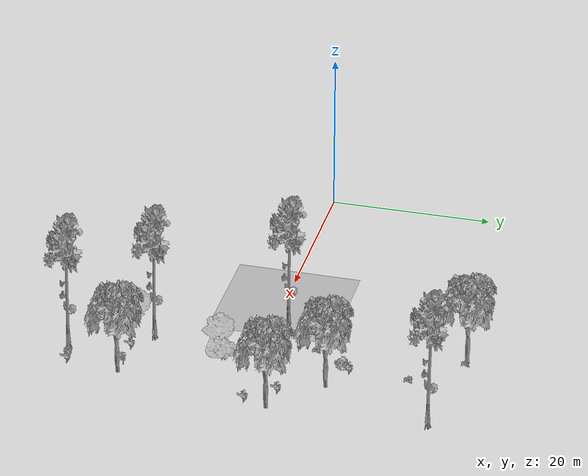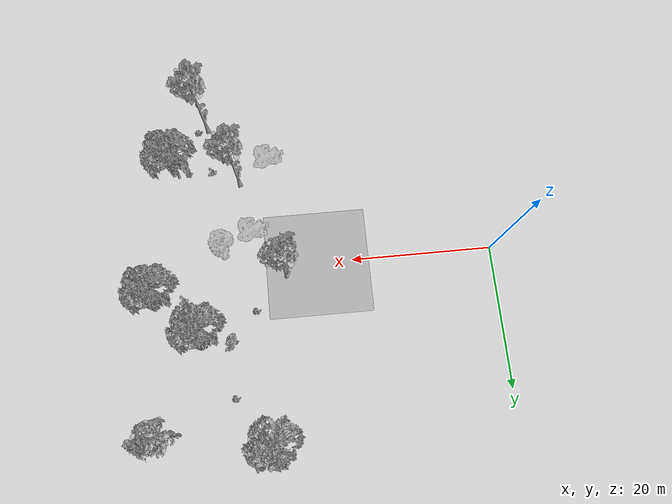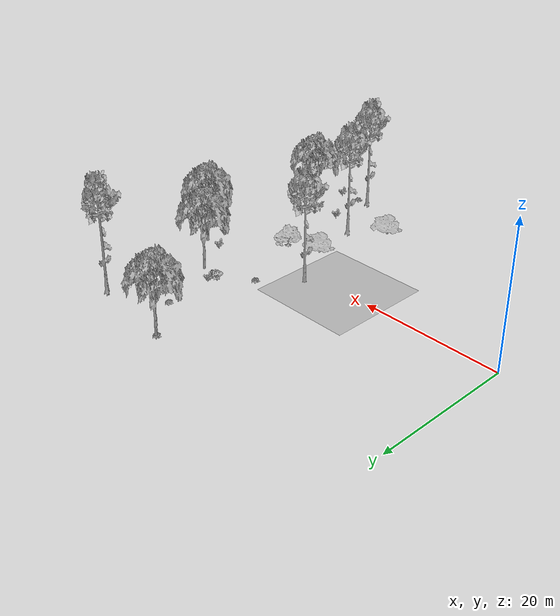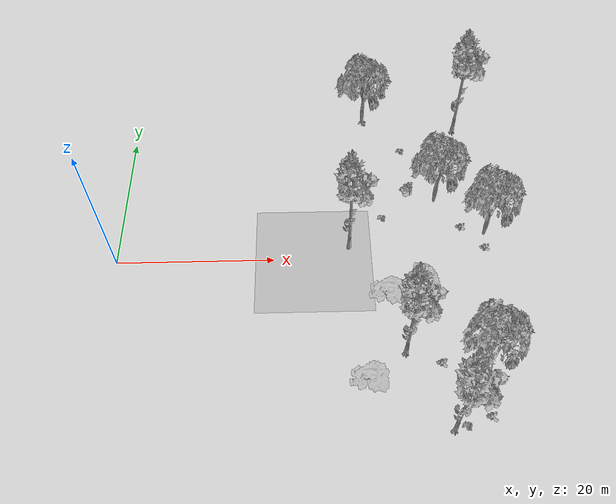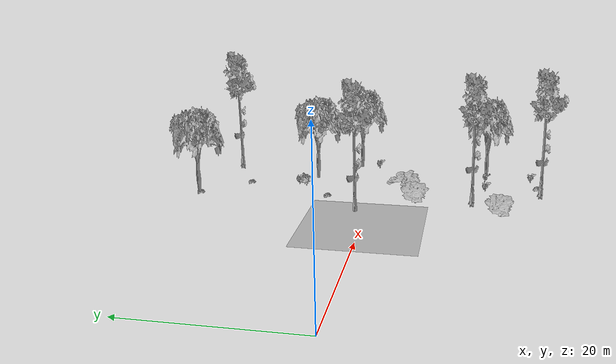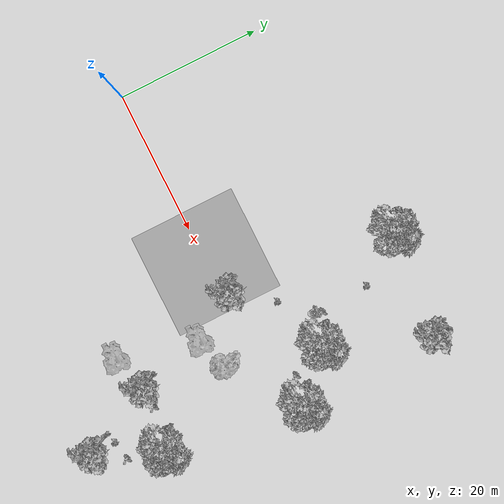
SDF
<sdf version="1.7">
 <world name="default">
  <model name="ground_plane">
   <static>1</static>
   <link name="link">
    <collision name="collision">
     <pose>25.0 0 0 0 -0 0</pose>
     <geometry><plane><normal>0 0 1</normal><size>50 50</size></plane></geometry>
     <surface><contact><ode><min_depth>0.01</min_depth><max_vel>0</max_vel></ode></contact></surface>
    </collision>
    <visual name="grass">
     <pose>25.0 0 0 0 -0 0</pose>
     <cast_shadows>0</cast_shadows>
     <geometry>
      <mesh>
       <scale>0.2731578947368421 0.2802702702702703 0.1</scale>
       <uri>file://grass_plane/meshes/grass_plane.dae</uri>
      </mesh>
     </geometry>
    </visual>
   </link>
  </model>
  <model name="Tree 2">
   <static>1</static>
   <pose>38.384416345682084 -3.901627223584814 0 1.57079 -0 0</pose>
   <link name="link">
    <collision name="collision">
     <geometry><mesh><scale>4 2.5 4</scale><uri>model://tree_1/meshes/tree_1.obj</uri></mesh></geometry>
    </collision>
    <visual name="visual">
     <geometry><mesh><scale>4 2.5 4</scale><uri>model://tree_1/meshes/tree_1.obj</uri></mesh></geometry>
    </visual>
   </link>
  </model>
  <model name="Tree 4">
   <static>1</static>
   <pose>32.509416345682084 23.876150554192954 0 1.57079 -0 0</pose>
   <link name="link">
    <collision name="collision">
     <geometry><mesh><scale>3.5 5 3.5</scale><uri>model://tree_2/meshes/tree_2.obj</uri></mesh></geometry>
    </collision>
    <visual name="visual">
     <geometry><mesh><scale>3.5 5 3.5</scale><uri>model://tree_2/meshes/tree_2.obj</uri></mesh></geometry>
    </visual>
   </link>
  </model>
  <model name="Tree 6">
   <static>1</static>
   <pose>44.259416345682084 -15.012738334695918 0 1.57079 -0 0</pose>
   <link name="link">
    <collision name="collision">
     <geometry><mesh><scale>3.5 5 3.5</scale><uri>model://tree_2/meshes/tree_2.obj</uri></mesh></geometry>
    </collision>
    <visual name="visual">
     <geometry><mesh><scale>3.5 5 3.5</scale><uri>model://tree_2/meshes/tree_2.obj</uri></mesh></geometry>
    </visual>
   </link>
  </model>
  <model name="Tree 8">
   <static>1</static>
   <pose>29.57191634568208 1.6539283319707323 0 1.57079 -0 0</pose>
   <link name="link">
    <collision name="collision">
     <geometry><mesh><scale>3.5 5 3.5</scale><uri>model://tree_9/meshes/tree_9.obj</uri></mesh></geometry>
    </collision>
    <visual name="visual">
     <geometry><mesh><scale>3.5 5 3.5</scale><uri>model://tree_9/meshes/tree_9.obj</uri></mesh></geometry>
    </visual>
   </link>
  </model>
  <model name="Tree 10">
   <static>1</static>
   <pose>41.321916345682084 9.061335739378137 0 1.57079 -0 0</pose>
   <link name="link">
    <collision name="collision">
     <geometry><mesh><scale>3.5 5 3.5</scale><uri>model://tree_2/meshes/tree_2.obj</uri></mesh></geometry>
    </collision>
    <visual name="visual">
     <geometry><mesh><scale>3.5 5 3.5</scale><uri>model://tree_2/meshes/tree_2.obj</uri></mesh></geometry>
    </visual>
   </link>
  </model>
  <model name="Tree 12">
   <static>1</static>
   <pose>35.446916345682084 -13.160886482844067 0 1.57079 -0 0</pose>
   <link name="link">
    <collision name="collision">
     <geometry><mesh><scale>3.5 5 3.5</scale><uri>model://tree_9/meshes/tree_9.obj</uri></mesh></geometry>
    </collision>
    <visual name="visual">
     <geometry><mesh><scale>3.5 5 3.5</scale><uri>model://tree_9/meshes/tree_9.obj</uri></mesh></geometry>
    </visual>
   </link>
  </model>
  <model name="Tree 14">
   <static>1</static>
   <pose>47.196916345682084 3.505780183822594 0 1.57079 -0 0</pose>
   <link name="link">
    <collision name="collision">
     <geometry><mesh><scale>3.5 5 3.5</scale><uri>model://tree_2/meshes/tree_2.obj</uri></mesh></geometry>
    </collision>
    <visual name="visual">
     <geometry><mesh><scale>3.5 5 3.5</scale><uri>model://tree_2/meshes/tree_2.obj</uri></mesh></geometry>
    </visual>
   </link>
  </model>
  <model name="Tree 18">
   <static>1</static>
   <pose>39.853166345682084 -22.420145742103326 0 1.57079 -0 0</pose>
   <link name="link">
    <collision name="collision">
     <geometry><mesh><scale>3.5 5 3.5</scale><uri>model://tree_9/meshes/tree_9.obj</uri></mesh></geometry>
    </collision>
    <visual name="visual">
     <geometry><mesh><scale>3.5 5 3.5</scale><uri>model://tree_9/meshes/tree_9.obj</uri></mesh></geometry>
    </visual>
   </link>
  </model>
  <model name="Tree 20">
   <static>1</static>
   <pose>33.978166345682084 -5.753479075436665 0 1.57079 -0 0</pose>
   <link name="link">
    <collision name="collision">
     <geometry><mesh><scale>3 2 3</scale><uri>model://tree_3/meshes/tree_3.obj</uri></mesh></geometry>
    </collision>
    <visual name="visual">
     <geometry><mesh><scale>3 2 3</scale><uri>model://tree_3/meshes/tree_3.obj</uri></mesh></geometry>
    </visual>
   </link>
  </model>
  <model name="Tree 22">
   <static>1</static>
   <pose>45.728166345682084 22.024298702341106 0 1.57079 -0 0</pose>
   <link name="link">
    <collision name="collision">
     <geometry><mesh><scale>3.5 5 3.5</scale><uri>model://tree_9/meshes/tree_9.obj</uri></mesh></geometry>
    </collision>
    <visual name="visual">
     <geometry><mesh><scale>3.5 5 3.5</scale><uri>model://tree_9/meshes/tree_9.obj</uri></mesh></geometry>
    </visual>
   </link>
  </model>
  <model name="Tree 24">
   <static>1</static>
   <pose>31.04066634568208 -16.864590186547773 0 1.57079 -0 0</pose>
   <link name="link">
    <collision name="collision">
     <geometry><mesh><scale>3 2 3</scale><uri>model://tree_3/meshes/tree_3.obj</uri></mesh></geometry>
    </collision>
    <visual name="visual">
     <geometry><mesh><scale>3 2 3</scale><uri>model://tree_3/meshes/tree_3.obj</uri></mesh></geometry>
    </visual>
   </link>
  </model>
  <model name="Bush 0">
   <static>1</static>
   <pose>34.11964867288539 6.227843013533306 0 1.57079 -0 0</pose>
   <link name="link">
    <collision name="collision">
     <geometry><mesh><scale>2 2 2</scale><uri>model://bush_2/meshes/bush_2.obj</uri></mesh></geometry>
     <surface><contact><collide_without_contact>false</collide_without_contact></contact></surface>
    </collision>
    <visual name="visual">
     <geometry><mesh><scale>2 2 2</scale><uri>model://bush_2/meshes/bush_2.obj</uri></mesh></geometry>
    </visual>
   </link>
  </model>
  <model name="Bush 1">
   <static>1</static>
   <pose>41.258044439739365 -22.021441880982366 0 1.57079 -0 0</pose>
   <link name="link">
    <collision name="collision">
     <geometry><mesh><scale>2 2 2</scale><uri>model://bush_2/meshes/bush_2.obj</uri></mesh></geometry>
     <surface><contact><collide_without_contact>false</collide_without_contact></contact></surface>
    </collision>
    <visual name="visual">
     <geometry><mesh><scale>2 2 2</scale><uri>model://bush_2/meshes/bush_2.obj</uri></mesh></geometry>
    </visual>
   </link>
  </model>
  <model name="Bush 2">
   <static>1</static>
   <pose>32.66142435814514 23.700400919275637 0 1.57079 -0 0</pose>
   <link name="link">
    <collision name="collision">
     <geometry><mesh><scale>2 2 2</scale><uri>model://bush_2/meshes/bush_2.obj</uri></mesh></geometry>
     <surface><contact><collide_without_contact>false</collide_without_contact></contact></surface>
    </collision>
    <visual name="visual">
     <geometry><mesh><scale>2 2 2</scale><uri>model://bush_2/meshes/bush_2.obj</uri></mesh></geometry>
    </visual>
   </link>
  </model>
  <model name="Bush 4">
   <static>1</static>
   <pose>37.69783153505381 9.954883251193472 0 1.57079 -0 0</pose>
   <link name="link">
    <collision name="collision">
     <geometry><mesh><scale>2 2 2</scale><uri>model://bush_1/meshes/bush_1.obj</uri></mesh></geometry>
     <surface><contact><collide_without_contact>false</collide_without_contact></contact></surface>
    </collision>
    <visual name="visual">
     <geometry><mesh><scale>2 2 2</scale><uri>model://bush_1/meshes/bush_1.obj</uri></mesh></geometry>
    </visual>
   </link>
  </model>
  <model name="Bush 8">
   <static>1</static>
   <pose>37.6438415888625 17.9841008046929 0 1.57079 -0 0</pose>
   <link name="link">
    <collision name="collision">
     <geometry><mesh><scale>2 2 2</scale><uri>model://bush_2/meshes/bush_2.obj</uri></mesh></geometry>
     <surface><contact><collide_without_contact>false</collide_without_contact></contact></surface>
    </collision>
    <visual name="visual">
     <geometry><mesh><scale>2 2 2</scale><uri>model://bush_2/meshes/bush_2.obj</uri></mesh></geometry>
    </visual>
   </link>
  </model>
  <model name="Bush 9">
   <static>1</static>
   <pose>44.25948224921386 4.0412335278674725 0 1.57079 -0 0</pose>
   <link name="link">
    <collision name="collision">
     <geometry><mesh><scale>2 2 2</scale><uri>model://bush_0/meshes/bush_0.obj</uri></mesh></geometry>
     <surface><contact><collide_without_contact>false</collide_without_contact></contact></surface>
    </collision>
    <visual name="visual">
     <geometry><mesh><scale>2 2 2</scale><uri>model://bush_0/meshes/bush_0.obj</uri></mesh></geometry>
    </visual>
   </link>
  </model>
  <model name="Bush 10">
   <static>1</static>
   <pose>38.21853158561445 11.085002250369378 0 1.57079 -0 0</pose>
   <link name="link">
    <collision name="collision">
     <geometry><mesh><scale>2 2 2</scale><uri>model://bush_0/meshes/bush_0.obj</uri></mesh></geometry>
     <surface><contact><collide_without_contact>false</collide_without_contact></contact></surface>
    </collision>
    <visual name="visual">
     <geometry><mesh><scale>2 2 2</scale><uri>model://bush_0/meshes/bush_0.obj</uri></mesh></geometry>
    </visual>
   </link>
  </model>
  <model name="Bush 11">
   <static>1</static>
   <pose>42.71408070015362 -14.829336405505211 0 1.57079 -0 0</pose>
   <link name="link">
    <collision name="collision">
     <geometry><mesh><scale>2 2 2</scale><uri>model://bush_5/meshes/bush_5.obj</uri></mesh></geometry>
     <surface><contact><collide_without_contact>false</collide_without_contact></contact></surface>
    </collision>
    <visual name="visual">
     <geometry><mesh><scale>2 2 2</scale><uri>model://bush_5/meshes/bush_5.obj</uri></mesh></geometry>
    </visual>
   </link>
  </model>
  <model name="Bush 13">
   <static>1</static>
   <pose>46.915762727809174 0.7888637506930749 0 1.57079 -0 0</pose>
   <link name="link">
    <collision name="collision">
     <geometry><mesh><scale>2 2 2</scale><uri>model://bush_0/meshes/bush_0.obj</uri></mesh></geometry>
     <surface><contact><collide_without_contact>false</collide_without_contact></contact></surface>
    </collision>
    <visual name="visual">
     <geometry><mesh><scale>2 2 2</scale><uri>model://bush_0/meshes/bush_0.obj</uri></mesh></geometry>
    </visual>
   </link>
  </model>
  <model name="Bush 15">
   <static>1</static>
   <pose>44.04780210485575 -21.279094786722204 0 1.57079 -0 0</pose>
   <link name="link">
    <collision name="collision">
     <geometry><mesh><scale>2 2 2</scale><uri>model://bush_0/meshes/bush_0.obj</uri></mesh></geometry>
     <surface><contact><collide_without_contact>false</collide_without_contact></contact></surface>
    </collision>
    <visual name="visual">
     <geometry><mesh><scale>2 2 2</scale><uri>model://bush_0/meshes/bush_0.obj</uri></mesh></geometry>
    </visual>
   </link>
  </model>
  <model name="Bush 16">
   <static>1</static>
   <pose>39.43962505590979 -14.901450856143923 0 1.57079 -0 0</pose>
   <link name="link">
    <collision name="collision">
     <geometry><mesh><scale>2 2 2</scale><uri>model://bush_0/meshes/bush_0.obj</uri></mesh></geometry>
     <surface><contact><collide_without_contact>false</collide_without_contact></contact></surface>
    </collision>
    <visual name="visual">
     <geometry><mesh><scale>2 2 2</scale><uri>model://bush_0/meshes/bush_0.obj</uri></mesh></geometry>
    </visual>
   </link>
  </model>
 </world>
</sdf>
